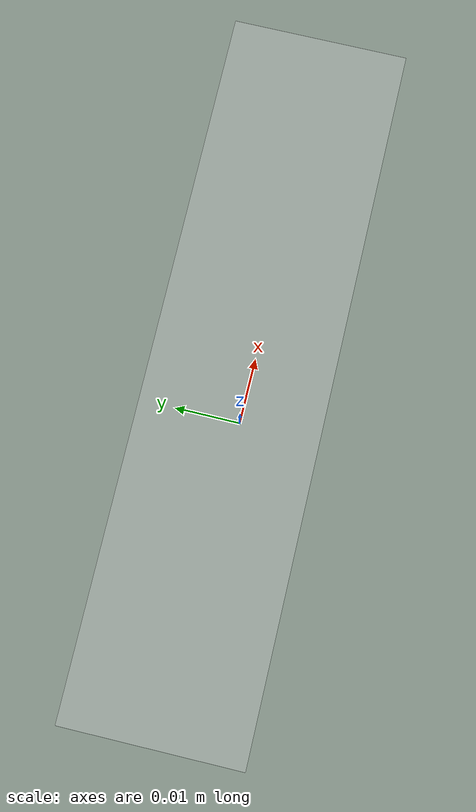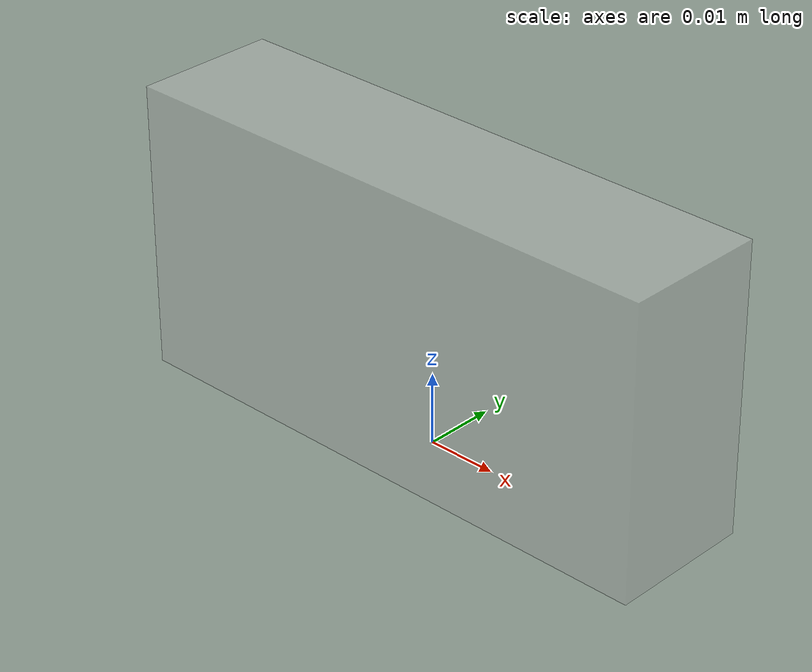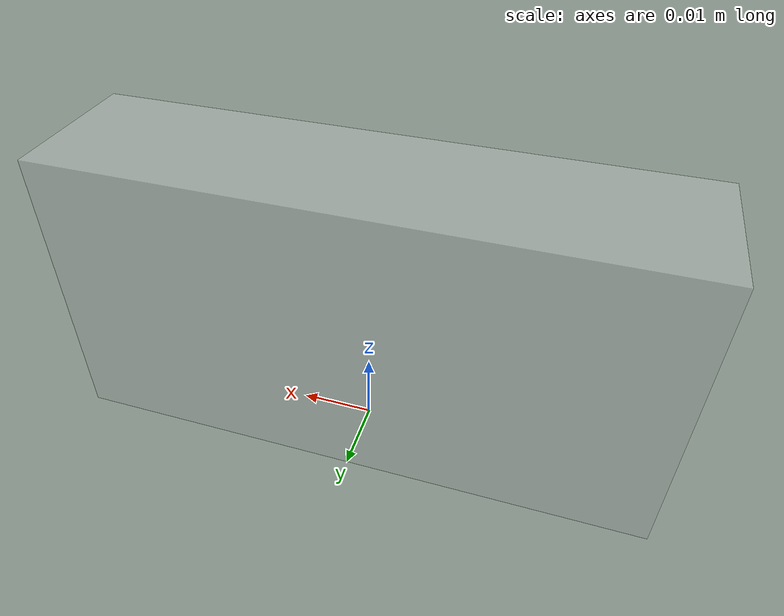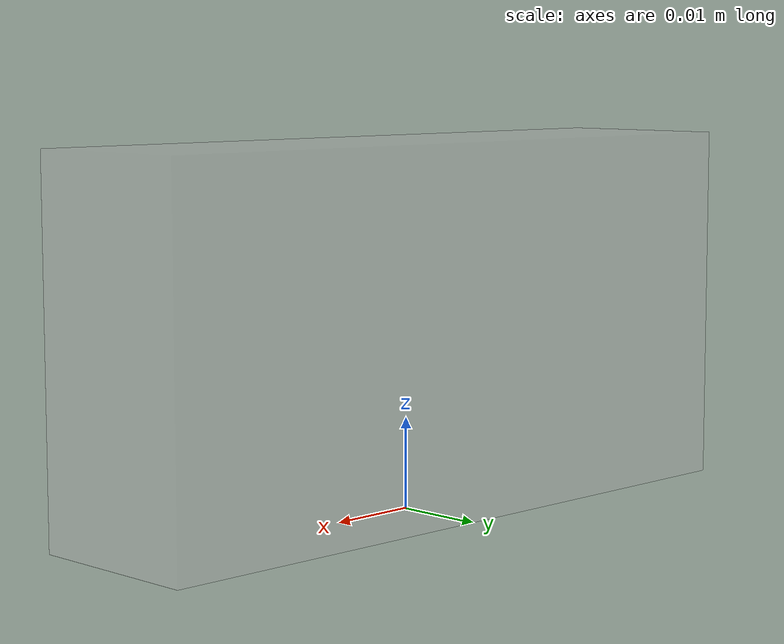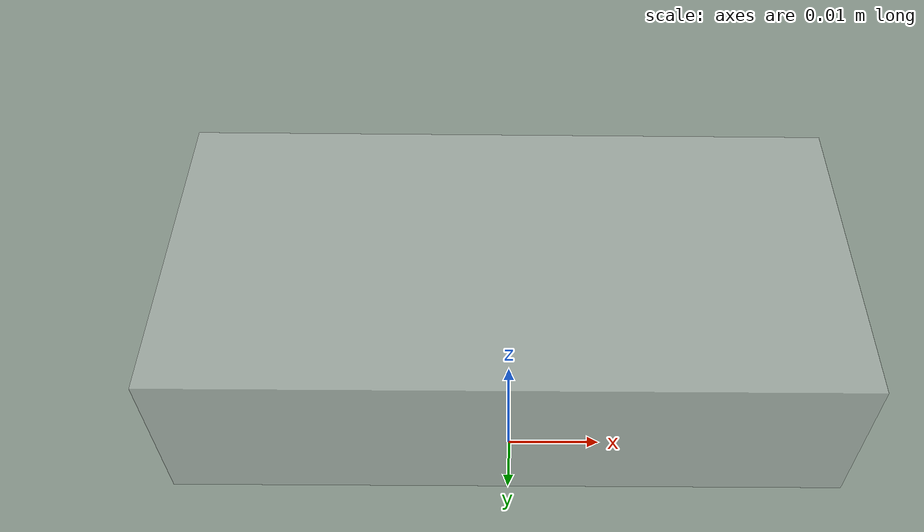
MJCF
<?xml version="1.0" ?>
<mujoco model="2_slot_block_visual">
    <asset/>
    <worldbody>
        <body>
            <body name="object">

                <geom pos="0.0 0.0 0.02" size="0.04 0.01 0.02" type="box" rgba="0.8 0.8 0.8 0.3" conaffinity="0" contype="0" group="1" mass="0.0001"/>

            </body>
            <site rgba="0 0 0 0" size="0" pos="0 0 0" name="bottom_site"/>
            <site rgba="0 0 0 0" size="0" pos="0 0 0" name="top_site"/>
            <site rgba="0 0 0 0" size="0" pos="0 0 0" name="horizontal_radius_site"/>
        </body>
    </worldbody>
</mujoco>
